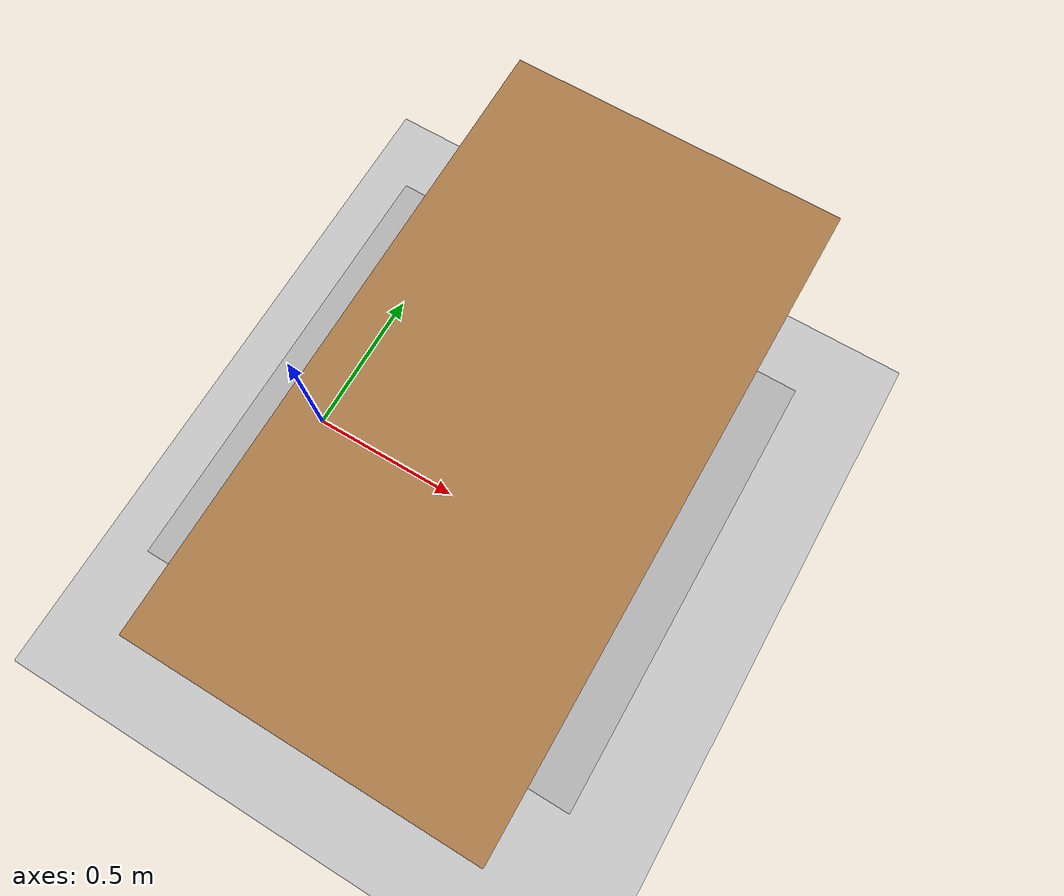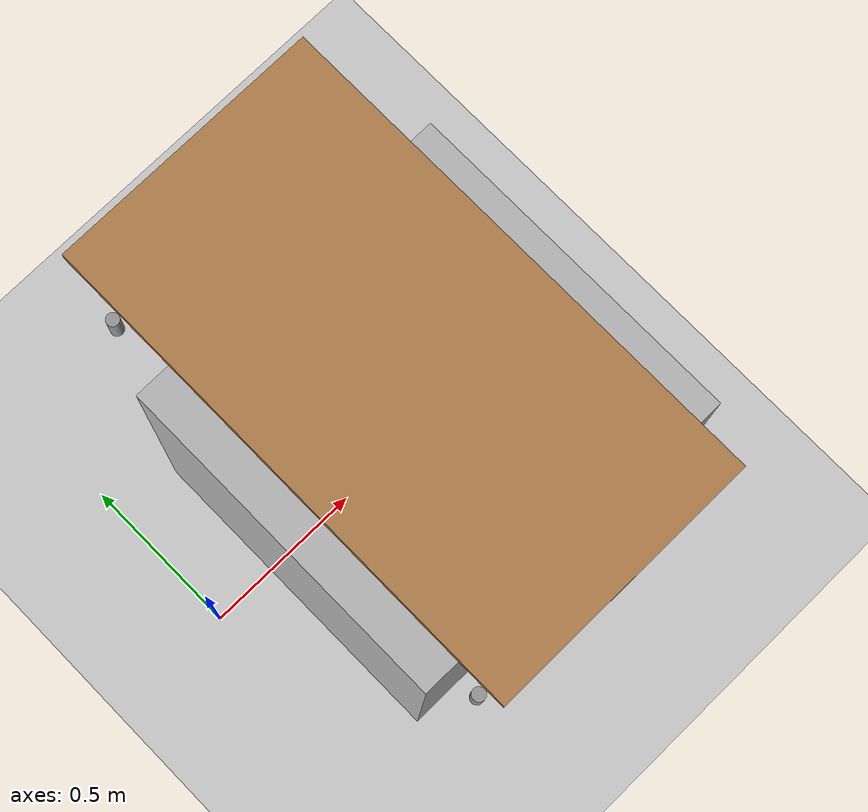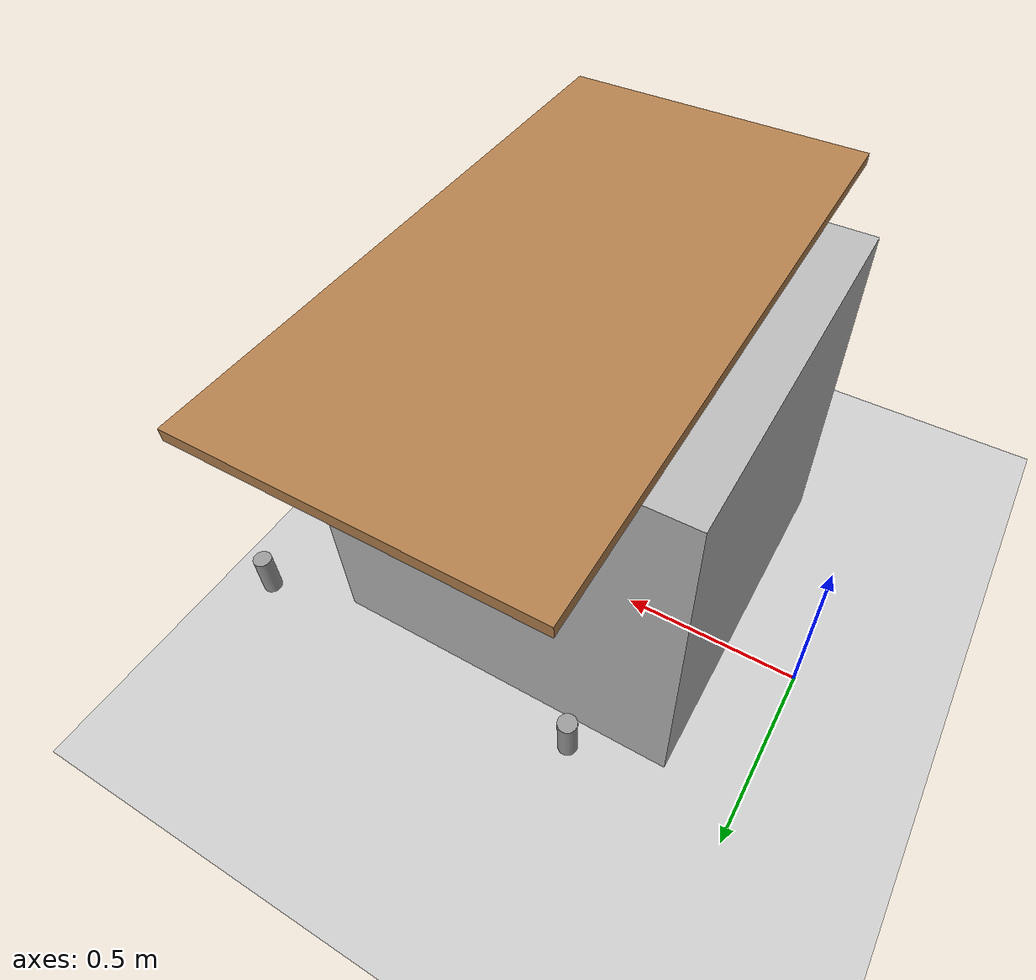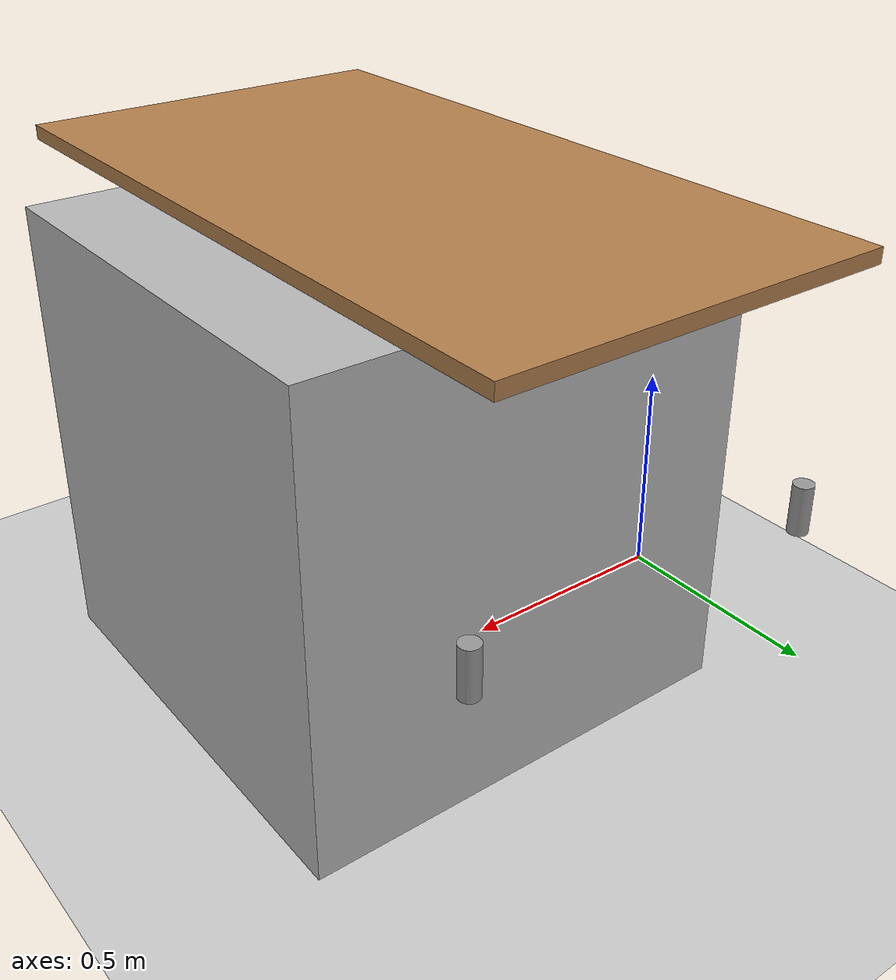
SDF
<?xml version="1.0" ?>
<sdf version="1.5">
  <world name="default">
    <!-- A global light source -->
    <include>
      <uri>model://sun</uri>
    </include>
    <!-- A ground plane -->
    <include>
      <uri>model://ground_plane</uri>
    </include>
    <!-- Trossen Robotics Offices -->
    <include>
      <uri>model://table_short</uri>
      <pose>0.7 0 0.1 0 -0 -1.5708</pose>
    </include>
    <include>
      <uri>model://red_cube</uri>
      <pose>0.8 0.1 0.5 0 -0 -1.5708</pose>
    </include>
    <include>
      <uri>model://green_cube</uri>
      <pose>0.7 -0.1 0.5 0 -0 -1.5708</pose>
    </include>
  </world>
</sdf>

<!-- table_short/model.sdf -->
<sdf version="1.5">
  <model name="table">
    <static>true</static>
    <link name="link">
      <collision name="surface">
        <pose>0 0 1.0 0 0 0</pose>
        <geometry>
          <box>
            <size>1.5 0.8 0.03</size>
          </box>
        </geometry>
        <surface>
          <friction>
            <ode>
              <mu>0.6</mu>
              <mu2>0.6</mu2>
            </ode>
          </friction>
        </surface>
      </collision>
      <visual name="visual1">
        <pose>0 0 1.0 0 0 0</pose>
        <geometry>
          <box>
            <size>1.5 0.8 0.03</size>
          </box>
        </geometry>
        <material>
          <script>
            <uri>file://media/materials/scripts/gazebo.material</uri>
            <name>Gazebo/Wood</name>
          </script>
        </material>
      </visual>
      <collision name="front_left_leg">
        <pose>0.68 0.38 0.5 0 0 0</pose>
        <geometry>
          <cylinder>
            <radius>0.02</radius>
            <length>0.10</length>
          </cylinder>
        </geometry>
      </collision>
      <visual name="front_left_leg">
        <pose>0.68 0.38 0.5 0 0 0</pose>
        <geometry>
          <cylinder>
            <radius>0.02</radius>
            <length>0.10</length>
          </cylinder>
        </geometry>
        <material>
          <script>
            <uri>file://media/materials/scripts/gazebo.material</uri>
            <name>Gazebo/Grey</name>
          </script>
        </material>
      </visual>
      <collision name="front_right_leg">
        <pose>0.68 -0.38 0.5 0 0 0</pose>
        <geometry>
          <cylinder>
            <radius>0.02</radius>
            <length>0.10</length>
          </cylinder>
        </geometry>
      </collision>
      <visual name="front_right_leg">
        <pose>0.68 -0.38 0.5 0 0 0</pose>
        <geometry>
          <cylinder>
            <radius>0.02</radius>
            <length>0.10</length>
          </cylinder>
        </geometry>
        <material>
          <script>
            <uri>file://media/materials/scripts/gazebo.material</uri>
            <name>Gazebo/Grey</name>
          </script>
        </material>
      </visual>
      <collision name="back_right_leg">
        <pose>-0.68 -0.38 0.5 0 0 0</pose>
        <geometry>
          <cylinder>
            <radius>0.02</radius>
            <length>0.10</length>
          </cylinder>
        </geometry>
      </collision>
      <visual name="back_right_leg">
        <pose>-0.68 -0.38 0.5 0 0 0</pose>
        <geometry>
          <cylinder>
            <radius>0.02</radius>
            <length>0.10</length>
          </cylinder>
        </geometry>
        <material>
          <script>
            <uri>file://media/materials/scripts/gazebo.material</uri>
            <name>Gazebo/Grey</name>
          </script>
        </material>
      </visual>
      <collision name="back_left_leg">
        <pose>-0.68 0.38 0.5 0 0 0</pose>
        <geometry>
          <cylinder>
            <radius>0.02</radius>
            <length>0.10</length>
          </cylinder>
        </geometry>
      </collision>
      <visual name="back_left_leg">
        <pose>-0.68 0.38 0.5 0 0 0</pose>
        <geometry>
          <cylinder>
            <radius>0.02</radius>
            <length>0.10</length>
          </cylinder>
        </geometry>
        <material>
          <script>
            <uri>file://media/materials/scripts/gazebo.material</uri>
            <name>Gazebo/Grey</name>
          </script>
        </material>
      </visual>
    </link>
  </model>
</sdf>

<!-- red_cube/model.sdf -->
<sdf version="1.6">
  <model name="red_cube">
    <static>false</static>
    <link name="link">
      <inertial>
        <mass>0.100</mass>
        <inertia>
          <ixx>0.0000417</ixx>
          <ixy>0</ixy>
          <ixz>0</ixz>
          <iyy>0.0000417</iyy>
          <iyz>0</iyz>
          <izz>0.0000417</izz>
        </inertia>
      </inertial>
      <collision name="collision">
        <geometry>
          <box>
            <size>0.05 0.05 0.05</size>
          </box>
        </geometry>
        <surface>
          <friction>
            <ode>
              <mu>5.0</mu>
              <mu2>5.0</mu2>
              <slip1>0.0001</slip1>
              <slip2>0.0001</slip2>
            </ode>
          </friction>
          <contact>
            <ode>
              <kp>1e5</kp>
              <kd>10</kd>
              <max_vel>0.1</max_vel>
              <min_depth>0.001</min_depth>
            </ode>
          </contact>
        </surface>
      </collision>
      <visual name="visual">
        <geometry>
          <box>
            <size>0.05 0.05 0.05</size>
          </box>
        </geometry>
        <material>
          <ambient>1.0 0.0 0.0 1</ambient>
          <diffuse>1.0 0.0 0.0 1</diffuse>
          <specular>0.5 0.5 0.5 1</specular>
        </material>
      </visual>
    </link>
  </model>
</sdf>

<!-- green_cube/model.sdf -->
<sdf version="1.4">
  <model name="green_cube">
    <pose>0 0 0.0 0 0 0</pose>
    <static>false</static>
    <link name="cube_link">
      <inertial>
        <mass>0.001</mass>
        <inertia> <!-- inertias are tricky to compute -->
          <!-- http://gazebosim.org/tutorials?tut=inertia&cat=build_robot -->
          <ixx>0.000083</ixx>       <!-- for a box: ixx = 0.083 * mass * (y*y + z*z) -->
          <ixy>0.0</ixy>         <!-- for a box: ixy = 0 -->
          <ixz>0.0</ixz>         <!-- for a box: ixz = 0 -->
          <iyy>0.000083</iyy>       <!-- for a box: iyy = 0.083 * mass * (x*x + z*z) -->
          <iyz>0.0</iyz>         <!-- for a box: iyz = 0 -->
          <izz>0.000083</izz>       <!-- for a box: izz = 0.083 * mass * (x*x + y*y) -->
        </inertia>
      </inertial>
      <collision name="collision">
        <geometry>
          <box>
            <size>1 1 1</size>
          </box>
        </geometry>
      </collision>
      <visual name="visual">
        <geometry>
          <box>
            <size>1 1 1</size>
          </box>
        </geometry>
      </visual>
    </link>
    <gazebo reference="cube_link">
      <material>Gazebo/Green</material>
    </gazebo>
  </model>
</sdf>
